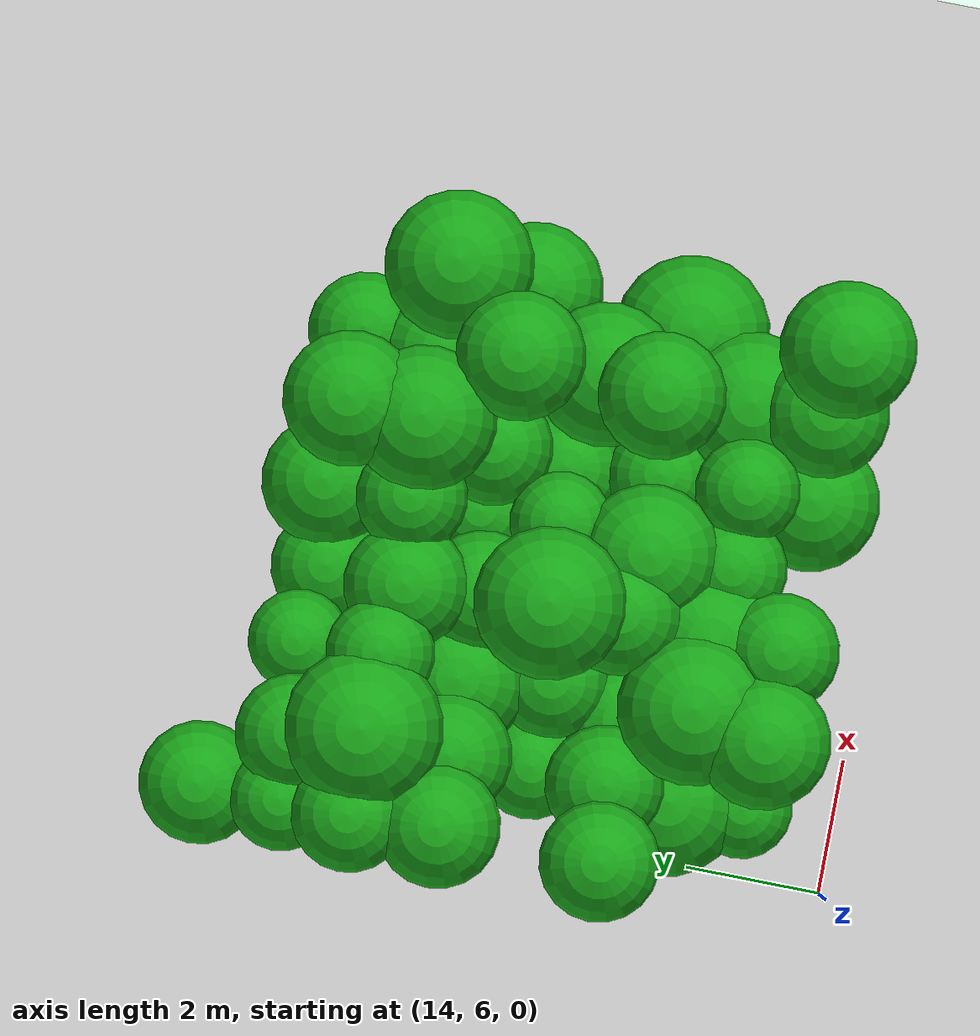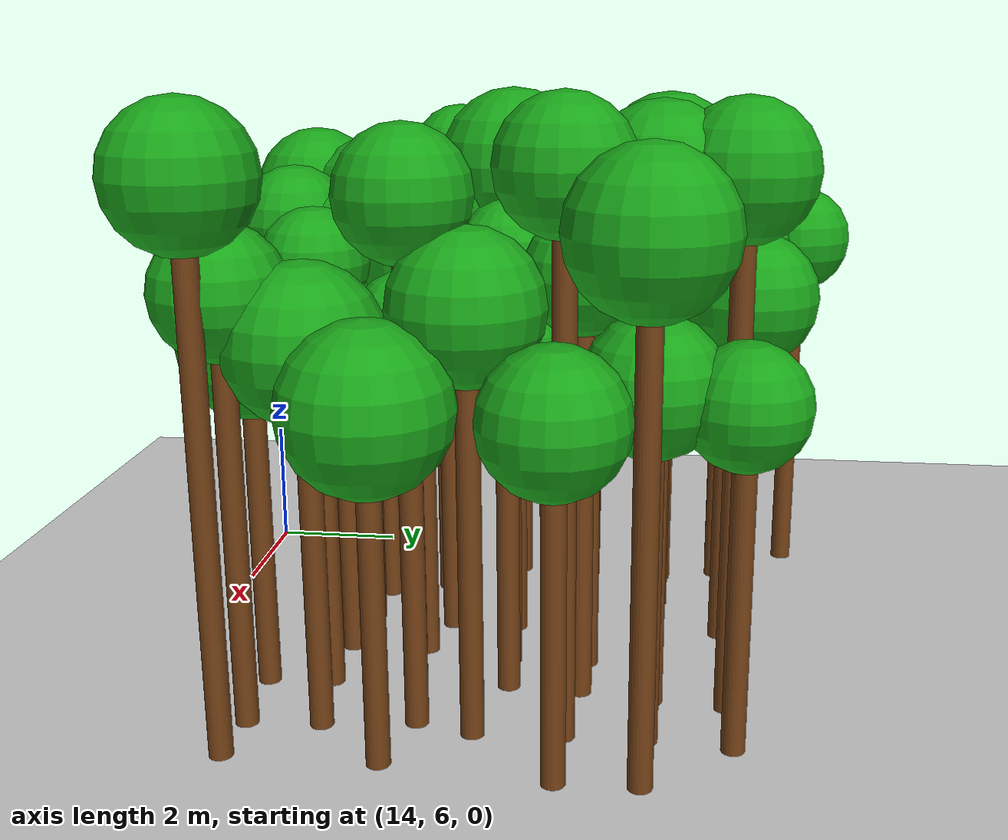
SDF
<sdf version="1.6">
 <world name="forest_world">
  <include><uri>model://sun</uri></include>
  <include><uri>model://ground_plane</uri></include>
  <model name="tree_2213_trunk">
   <static>true</static>
   <pose>14.09 9.43 3.25 0 0 0</pose>
   <link name="link">
    <collision name="collision">
     <geometry><cylinder><radius>0.16</radius><length>6.50</length></cylinder></geometry>
    </collision>
    <visual name="visual">
     <geometry><cylinder><radius>0.16</radius><length>6.50</length></cylinder></geometry>
     <material><ambient>0.35 0.20 0.05 1</ambient><diffuse>0.45 0.25 0.08 1</diffuse></material>
    </visual>
   </link>
  </model>
  <model name="tree_2213_leaf">
   <static>true</static>
   <pose>14.09 9.43 7.00 0 0 0</pose>
   <link name="link">
    <collision name="collision"><geometry><sphere><radius>0.83</radius></sphere></geometry></collision>
    <visual name="visual">
     <geometry><sphere><radius>0.83</radius></sphere></geometry>
     <material><ambient>0.05 0.45 0.05 1</ambient><diffuse>0.10 0.65 0.10 1</diffuse></material>
    </visual>
   </link>
  </model>
  <model name="tree_2215_trunk">
   <static>true</static>
   <pose>14.15 11.68 3.14 0 0 0</pose>
   <link name="link">
    <collision name="collision">
     <geometry><cylinder><radius>0.16</radius><length>6.27</length></cylinder></geometry>
    </collision>
    <visual name="visual">
     <geometry><cylinder><radius>0.16</radius><length>6.27</length></cylinder></geometry>
     <material><ambient>0.35 0.20 0.05 1</ambient><diffuse>0.45 0.25 0.08 1</diffuse></material>
    </visual>
   </link>
  </model>
  <model name="tree_2215_leaf">
   <static>true</static>
   <pose>14.15 11.68 6.79 0 0 0</pose>
   <link name="link">
    <collision name="collision"><geometry><sphere><radius>0.86</radius></sphere></geometry></collision>
    <visual name="visual">
     <geometry><sphere><radius>0.86</radius></sphere></geometry>
     <material><ambient>0.05 0.45 0.05 1</ambient><diffuse>0.10 0.65 0.10 1</diffuse></material>
    </visual>
   </link>
  </model>
  <model name="tree_2216_trunk">
   <static>true</static>
   <pose>14.09 12.90 3.15 0 0 0</pose>
   <link name="link">
    <collision name="collision">
     <geometry><cylinder><radius>0.16</radius><length>6.30</length></cylinder></geometry>
    </collision>
    <visual name="visual">
     <geometry><cylinder><radius>0.16</radius><length>6.30</length></cylinder></geometry>
     <material><ambient>0.35 0.20 0.05 1</ambient><diffuse>0.45 0.25 0.08 1</diffuse></material>
    </visual>
   </link>
  </model>
  <model name="tree_2216_leaf">
   <static>true</static>
   <pose>14.09 12.90 6.79 0 0 0</pose>
   <link name="link">
    <collision name="collision"><geometry><sphere><radius>0.81</radius></sphere></geometry></collision>
    <visual name="visual">
     <geometry><sphere><radius>0.81</radius></sphere></geometry>
     <material><ambient>0.05 0.45 0.05 1</ambient><diffuse>0.10 0.65 0.10 1</diffuse></material>
    </visual>
   </link>
  </model>
  <model name="tree_2217_trunk">
   <static>true</static>
   <pose>14.10 13.87 2.88 0 0 0</pose>
   <link name="link">
    <collision name="collision">
     <geometry><cylinder><radius>0.16</radius><length>5.75</length></cylinder></geometry>
    </collision>
    <visual name="visual">
     <geometry><cylinder><radius>0.16</radius><length>5.75</length></cylinder></geometry>
     <material><ambient>0.35 0.20 0.05 1</ambient><diffuse>0.45 0.25 0.08 1</diffuse></material>
    </visual>
   </link>
  </model>
  <model name="tree_2217_leaf">
   <static>true</static>
   <pose>14.10 13.87 6.19 0 0 0</pose>
   <link name="link">
    <collision name="collision"><geometry><sphere><radius>0.73</radius></sphere></geometry></collision>
    <visual name="visual">
     <geometry><sphere><radius>0.73</radius></sphere></geometry>
     <material><ambient>0.05 0.45 0.05 1</ambient><diffuse>0.10 0.65 0.10 1</diffuse></material>
    </visual>
   </link>
  </model>
  <model name="tree_2218_trunk">
   <static>true</static>
   <pose>14.09 15.04 2.58 0 0 0</pose>
   <link name="link">
    <collision name="collision">
     <geometry><cylinder><radius>0.16</radius><length>5.15</length></cylinder></geometry>
    </collision>
    <visual name="visual">
     <geometry><cylinder><radius>0.16</radius><length>5.15</length></cylinder></geometry>
     <material><ambient>0.35 0.20 0.05 1</ambient><diffuse>0.45 0.25 0.08 1</diffuse></material>
    </visual>
   </link>
  </model>
  <model name="tree_2218_leaf">
   <static>true</static>
   <pose>14.09 15.04 5.67 0 0 0</pose>
   <link name="link">
    <collision name="collision"><geometry><sphere><radius>0.86</radius></sphere></geometry></collision>
    <visual name="visual">
     <geometry><sphere><radius>0.86</radius></sphere></geometry>
     <material><ambient>0.05 0.45 0.05 1</ambient><diffuse>0.10 0.65 0.10 1</diffuse></material>
    </visual>
   </link>
  </model>
  <model name="tree_2266_trunk">
   <static>true</static>
   <pose>15.13 7.57 2.16 0 0 0</pose>
   <link name="link">
    <collision name="collision">
     <geometry><cylinder><radius>0.16</radius><length>4.32</length></cylinder></geometry>
    </collision>
    <visual name="visual">
     <geometry><cylinder><radius>0.16</radius><length>4.32</length></cylinder></geometry>
     <material><ambient>0.35 0.20 0.05 1</ambient><diffuse>0.45 0.25 0.08 1</diffuse></material>
    </visual>
   </link>
  </model>
  <model name="tree_2266_leaf">
   <static>true</static>
   <pose>15.13 7.57 4.75 0 0 0</pose>
   <link name="link">
    <collision name="collision"><geometry><sphere><radius>0.72</radius></sphere></geometry></collision>
    <visual name="visual">
     <geometry><sphere><radius>0.72</radius></sphere></geometry>
     <material><ambient>0.05 0.45 0.05 1</ambient><diffuse>0.10 0.65 0.10 1</diffuse></material>
    </visual>
   </link>
  </model>
  <model name="tree_2267_trunk">
   <static>true</static>
   <pose>15.04 8.62 2.07 0 0 0</pose>
   <link name="link">
    <collision name="collision">
     <geometry><cylinder><radius>0.16</radius><length>4.13</length></cylinder></geometry>
    </collision>
    <visual name="visual">
     <geometry><cylinder><radius>0.16</radius><length>4.13</length></cylinder></geometry>
     <material><ambient>0.35 0.20 0.05 1</ambient><diffuse>0.45 0.25 0.08 1</diffuse></material>
    </visual>
   </link>
  </model>
  <model name="tree_2267_leaf">
   <static>true</static>
   <pose>15.04 8.62 4.78 0 0 0</pose>
   <link name="link">
    <collision name="collision"><geometry><sphere><radius>1.08</radius></sphere></geometry></collision>
    <visual name="visual">
     <geometry><sphere><radius>1.08</radius></sphere></geometry>
     <material><ambient>0.05 0.45 0.05 1</ambient><diffuse>0.10 0.65 0.10 1</diffuse></material>
    </visual>
   </link>
  </model>
  <model name="tree_2268_trunk">
   <static>true</static>
   <pose>15.11 9.54 2.73 0 0 0</pose>
   <link name="link">
    <collision name="collision">
     <geometry><cylinder><radius>0.16</radius><length>5.46</length></cylinder></geometry>
    </collision>
    <visual name="visual">
     <geometry><cylinder><radius>0.16</radius><length>5.46</length></cylinder></geometry>
     <material><ambient>0.35 0.20 0.05 1</ambient><diffuse>0.45 0.25 0.08 1</diffuse></material>
    </visual>
   </link>
  </model>
  <model name="tree_2268_leaf">
   <static>true</static>
   <pose>15.11 9.54 5.96 0 0 0</pose>
   <link name="link">
    <collision name="collision"><geometry><sphere><radius>0.83</radius></sphere></geometry></collision>
    <visual name="visual">
     <geometry><sphere><radius>0.83</radius></sphere></geometry>
     <material><ambient>0.05 0.45 0.05 1</ambient><diffuse>0.10 0.65 0.10 1</diffuse></material>
    </visual>
   </link>
  </model>
  <model name="tree_2269_trunk">
   <static>true</static>
   <pose>15.16 10.57 2.13 0 0 0</pose>
   <link name="link">
    <collision name="collision">
     <geometry><cylinder><radius>0.16</radius><length>4.26</length></cylinder></geometry>
    </collision>
    <visual name="visual">
     <geometry><cylinder><radius>0.16</radius><length>4.26</length></cylinder></geometry>
     <material><ambient>0.35 0.20 0.05 1</ambient><diffuse>0.45 0.25 0.08 1</diffuse></material>
    </visual>
   </link>
  </model>
  <model name="tree_2269_leaf">
   <static>true</static>
   <pose>15.16 10.57 4.72 0 0 0</pose>
   <link name="link">
    <collision name="collision"><geometry><sphere><radius>0.76</radius></sphere></geometry></collision>
    <visual name="visual">
     <geometry><sphere><radius>0.76</radius></sphere></geometry>
     <material><ambient>0.05 0.45 0.05 1</ambient><diffuse>0.10 0.65 0.10 1</diffuse></material>
    </visual>
   </link>
  </model>
  <model name="tree_2270_trunk">
   <static>true</static>
   <pose>15.12 11.72 2.79 0 0 0</pose>
   <link name="link">
    <collision name="collision">
     <geometry><cylinder><radius>0.16</radius><length>5.58</length></cylinder></geometry>
    </collision>
    <visual name="visual">
     <geometry><cylinder><radius>0.16</radius><length>5.58</length></cylinder></geometry>
     <material><ambient>0.35 0.20 0.05 1</ambient><diffuse>0.45 0.25 0.08 1</diffuse></material>
    </visual>
   </link>
  </model>
  <model name="tree_2270_leaf">
   <static>true</static>
   <pose>15.12 11.72 6.10 0 0 0</pose>
   <link name="link">
    <collision name="collision"><geometry><sphere><radius>0.87</radius></sphere></geometry></collision>
    <visual name="visual">
     <geometry><sphere><radius>0.87</radius></sphere></geometry>
     <material><ambient>0.05 0.45 0.05 1</ambient><diffuse>0.10 0.65 0.10 1</diffuse></material>
    </visual>
   </link>
  </model>
  <model name="tree_2271_trunk">
   <static>true</static>
   <pose>15.27 12.93 3.18 0 0 0</pose>
   <link name="link">
    <collision name="collision">
     <geometry><cylinder><radius>0.16</radius><length>6.36</length></cylinder></geometry>
    </collision>
    <visual name="visual">
     <geometry><cylinder><radius>0.16</radius><length>6.36</length></cylinder></geometry>
     <material><ambient>0.35 0.20 0.05 1</ambient><diffuse>0.45 0.25 0.08 1</diffuse></material>
    </visual>
   </link>
  </model>
  <model name="tree_2271_leaf">
   <static>true</static>
   <pose>15.27 12.93 7.02 0 0 0</pose>
   <link name="link">
    <collision name="collision"><geometry><sphere><radius>1.10</radius></sphere></geometry></collision>
    <visual name="visual">
     <geometry><sphere><radius>1.10</radius></sphere></geometry>
     <material><ambient>0.05 0.45 0.05 1</ambient><diffuse>0.10 0.65 0.10 1</diffuse></material>
    </visual>
   </link>
  </model>
  <model name="tree_2272_trunk">
   <static>true</static>
   <pose>15.02 13.85 2.97 0 0 0</pose>
   <link name="link">
    <collision name="collision">
     <geometry><cylinder><radius>0.16</radius><length>5.94</length></cylinder></geometry>
    </collision>
    <visual name="visual">
     <geometry><cylinder><radius>0.16</radius><length>5.94</length></cylinder></geometry>
     <material><ambient>0.35 0.20 0.05 1</ambient><diffuse>0.45 0.25 0.08 1</diffuse></material>
    </visual>
   </link>
  </model>
  <model name="tree_2272_leaf">
   <static>true</static>
   <pose>15.02 13.85 6.44 0 0 0</pose>
   <link name="link">
    <collision name="collision"><geometry><sphere><radius>0.83</radius></sphere></geometry></collision>
    <visual name="visual">
     <geometry><sphere><radius>0.83</radius></sphere></geometry>
     <material><ambient>0.05 0.45 0.05 1</ambient><diffuse>0.10 0.65 0.10 1</diffuse></material>
    </visual>
   </link>
  </model>
  <model name="tree_2321_trunk">
   <static>true</static>
   <pose>16.10 7.52 3.04 0 0 0</pose>
   <link name="link">
    <collision name="collision">
     <geometry><cylinder><radius>0.16</radius><length>6.09</length></cylinder></geometry>
    </collision>
    <visual name="visual">
     <geometry><cylinder><radius>0.16</radius><length>6.09</length></cylinder></geometry>
     <material><ambient>0.35 0.20 0.05 1</ambient><diffuse>0.45 0.25 0.08 1</diffuse></material>
    </visual>
   </link>
  </model>
  <model name="tree_2321_leaf">
   <static>true</static>
   <pose>16.10 7.52 6.65 0 0 0</pose>
   <link name="link">
    <collision name="collision"><geometry><sphere><radius>0.93</radius></sphere></geometry></collision>
    <visual name="visual">
     <geometry><sphere><radius>0.93</radius></sphere></geometry>
     <material><ambient>0.05 0.45 0.05 1</ambient><diffuse>0.10 0.65 0.10 1</diffuse></material>
    </visual>
   </link>
  </model>
  <model name="tree_2322_trunk">
   <static>true</static>
   <pose>16.37 8.54 2.91 0 0 0</pose>
   <link name="link">
    <collision name="collision">
     <geometry><cylinder><radius>0.16</radius><length>5.81</length></cylinder></geometry>
    </collision>
    <visual name="visual">
     <geometry><cylinder><radius>0.16</radius><length>5.81</length></cylinder></geometry>
     <material><ambient>0.35 0.20 0.05 1</ambient><diffuse>0.45 0.25 0.08 1</diffuse></material>
    </visual>
   </link>
  </model>
  <model name="tree_2322_leaf">
   <static>true</static>
   <pose>16.37 8.54 6.45 0 0 0</pose>
   <link name="link">
    <collision name="collision"><geometry><sphere><radius>1.06</radius></sphere></geometry></collision>
    <visual name="visual">
     <geometry><sphere><radius>1.06</radius></sphere></geometry>
     <material><ambient>0.05 0.45 0.05 1</ambient><diffuse>0.10 0.65 0.10 1</diffuse></material>
    </visual>
   </link>
  </model>
  <model name="tree_2323_trunk">
   <static>true</static>
   <pose>16.02 9.44 2.11 0 0 0</pose>
   <link name="link">
    <collision name="collision">
     <geometry><cylinder><radius>0.16</radius><length>4.21</length></cylinder></geometry>
    </collision>
    <visual name="visual">
     <geometry><cylinder><radius>0.16</radius><length>4.21</length></cylinder></geometry>
     <material><ambient>0.35 0.20 0.05 1</ambient><diffuse>0.45 0.25 0.08 1</diffuse></material>
    </visual>
   </link>
  </model>
  <model name="tree_2323_leaf">
   <static>true</static>
   <pose>16.02 9.44 4.77 0 0 0</pose>
   <link name="link">
    <collision name="collision"><geometry><sphere><radius>0.92</radius></sphere></geometry></collision>
    <visual name="visual">
     <geometry><sphere><radius>0.92</radius></sphere></geometry>
     <material><ambient>0.05 0.45 0.05 1</ambient><diffuse>0.10 0.65 0.10 1</diffuse></material>
    </visual>
   </link>
  </model>
  <model name="tree_2324_trunk">
   <static>true</static>
   <pose>16.38 10.52 2.36 0 0 0</pose>
   <link name="link">
    <collision name="collision">
     <geometry><cylinder><radius>0.16</radius><length>4.73</length></cylinder></geometry>
    </collision>
    <visual name="visual">
     <geometry><cylinder><radius>0.16</radius><length>4.73</length></cylinder></geometry>
     <material><ambient>0.35 0.20 0.05 1</ambient><diffuse>0.45 0.25 0.08 1</diffuse></material>
    </visual>
   </link>
  </model>
  <model name="tree_2324_leaf">
   <static>true</static>
   <pose>16.38 10.52 5.21 0 0 0</pose>
   <link name="link">
    <collision name="collision"><geometry><sphere><radius>0.81</radius></sphere></geometry></collision>
    <visual name="visual">
     <geometry><sphere><radius>0.81</radius></sphere></geometry>
     <material><ambient>0.05 0.45 0.05 1</ambient><diffuse>0.10 0.65 0.10 1</diffuse></material>
    </visual>
   </link>
  </model>
  <model name="tree_2325_trunk">
   <static>true</static>
   <pose>16.16 11.79 2.41 0 0 0</pose>
   <link name="link">
    <collision name="collision">
     <geometry><cylinder><radius>0.16</radius><length>4.83</length></cylinder></geometry>
    </collision>
    <visual name="visual">
     <geometry><cylinder><radius>0.16</radius><length>4.83</length></cylinder></geometry>
     <material><ambient>0.35 0.20 0.05 1</ambient><diffuse>0.45 0.25 0.08 1</diffuse></material>
    </visual>
   </link>
  </model>
  <model name="tree_2325_leaf">
   <static>true</static>
   <pose>16.16 11.79 5.42 0 0 0</pose>
   <link name="link">
    <collision name="collision"><geometry><sphere><radius>0.98</radius></sphere></geometry></collision>
    <visual name="visual">
     <geometry><sphere><radius>0.98</radius></sphere></geometry>
     <material><ambient>0.05 0.45 0.05 1</ambient><diffuse>0.10 0.65 0.10 1</diffuse></material>
    </visual>
   </link>
  </model>
  <model name="tree_2326_trunk">
   <static>true</static>
   <pose>16.33 12.90 3.18 0 0 0</pose>
   <link name="link">
    <collision name="collision">
     <geometry><cylinder><radius>0.16</radius><length>6.36</length></cylinder></geometry>
    </collision>
    <visual name="visual">
     <geometry><cylinder><radius>0.16</radius><length>6.36</length></cylinder></geometry>
     <material><ambient>0.35 0.20 0.05 1</ambient><diffuse>0.45 0.25 0.08 1</diffuse></material>
    </visual>
   </link>
  </model>
  <model name="tree_2326_leaf">
   <static>true</static>
   <pose>16.33 12.90 6.81 0 0 0</pose>
   <link name="link">
    <collision name="collision"><geometry><sphere><radius>0.75</radius></sphere></geometry></collision>
    <visual name="visual">
     <geometry><sphere><radius>0.75</radius></sphere></geometry>
     <material><ambient>0.05 0.45 0.05 1</ambient><diffuse>0.10 0.65 0.10 1</diffuse></material>
    </visual>
   </link>
  </model>
  <model name="tree_2327_trunk">
   <static>true</static>
   <pose>16.28 14.06 2.71 0 0 0</pose>
   <link name="link">
    <collision name="collision">
     <geometry><cylinder><radius>0.16</radius><length>5.42</length></cylinder></geometry>
    </collision>
    <visual name="visual">
     <geometry><cylinder><radius>0.16</radius><length>5.42</length></cylinder></geometry>
     <material><ambient>0.35 0.20 0.05 1</ambient><diffuse>0.45 0.25 0.08 1</diffuse></material>
    </visual>
   </link>
  </model>
  <model name="tree_2327_leaf">
   <static>true</static>
   <pose>16.28 14.06 5.85 0 0 0</pose>
   <link name="link">
    <collision name="collision"><geometry><sphere><radius>0.71</radius></sphere></geometry></collision>
    <visual name="visual">
     <geometry><sphere><radius>0.71</radius></sphere></geometry>
     <material><ambient>0.05 0.45 0.05 1</ambient><diffuse>0.10 0.65 0.10 1</diffuse></material>
    </visual>
   </link>
  </model>
  <model name="tree_2376_trunk">
   <static>true</static>
   <pose>17.36 7.51 2.91 0 0 0</pose>
   <link name="link">
    <collision name="collision">
     <geometry><cylinder><radius>0.16</radius><length>5.83</length></cylinder></geometry>
    </collision>
    <visual name="visual">
     <geometry><cylinder><radius>0.16</radius><length>5.83</length></cylinder></geometry>
     <material><ambient>0.35 0.20 0.05 1</ambient><diffuse>0.45 0.25 0.08 1</diffuse></material>
    </visual>
   </link>
  </model>
  <model name="tree_2376_leaf">
   <static>true</static>
   <pose>17.36 7.51 6.32 0 0 0</pose>
   <link name="link">
    <collision name="collision"><geometry><sphere><radius>0.82</radius></sphere></geometry></collision>
    <visual name="visual">
     <geometry><sphere><radius>0.82</radius></sphere></geometry>
     <material><ambient>0.05 0.45 0.05 1</ambient><diffuse>0.10 0.65 0.10 1</diffuse></material>
    </visual>
   </link>
  </model>
  <model name="tree_2377_trunk">
   <static>true</static>
   <pose>17.30 8.48 2.57 0 0 0</pose>
   <link name="link">
    <collision name="collision">
     <geometry><cylinder><radius>0.16</radius><length>5.15</length></cylinder></geometry>
    </collision>
    <visual name="visual">
     <geometry><cylinder><radius>0.16</radius><length>5.15</length></cylinder></geometry>
     <material><ambient>0.35 0.20 0.05 1</ambient><diffuse>0.45 0.25 0.08 1</diffuse></material>
    </visual>
   </link>
  </model>
  <model name="tree_2377_leaf">
   <static>true</static>
   <pose>17.30 8.48 5.80 0 0 0</pose>
   <link name="link">
    <collision name="collision"><geometry><sphere><radius>1.09</radius></sphere></geometry></collision>
    <visual name="visual">
     <geometry><sphere><radius>1.09</radius></sphere></geometry>
     <material><ambient>0.05 0.45 0.05 1</ambient><diffuse>0.10 0.65 0.10 1</diffuse></material>
    </visual>
   </link>
  </model>
  <model name="tree_2378_trunk">
   <static>true</static>
   <pose>17.45 9.76 3.00 0 0 0</pose>
   <link name="link">
    <collision name="collision">
     <geometry><cylinder><radius>0.16</radius><length>5.99</length></cylinder></geometry>
    </collision>
    <visual name="visual">
     <geometry><cylinder><radius>0.16</radius><length>5.99</length></cylinder></geometry>
     <material><ambient>0.35 0.20 0.05 1</ambient><diffuse>0.45 0.25 0.08 1</diffuse></material>
    </visual>
   </link>
  </model>
  <model name="tree_2378_leaf">
   <static>true</static>
   <pose>17.45 9.76 6.50 0 0 0</pose>
   <link name="link">
    <collision name="collision"><geometry><sphere><radius>0.84</radius></sphere></geometry></collision>
    <visual name="visual">
     <geometry><sphere><radius>0.84</radius></sphere></geometry>
     <material><ambient>0.05 0.45 0.05 1</ambient><diffuse>0.10 0.65 0.10 1</diffuse></material>
    </visual>
   </link>
  </model>
  <model name="tree_2379_trunk">
   <static>true</static>
   <pose>17.42 10.75 3.29 0 0 0</pose>
   <link name="link">
    <collision name="collision">
     <geometry><cylinder><radius>0.16</radius><length>6.59</length></cylinder></geometry>
    </collision>
    <visual name="visual">
     <geometry><cylinder><radius>0.16</radius><length>6.59</length></cylinder></geometry>
     <material><ambient>0.35 0.20 0.05 1</ambient><diffuse>0.45 0.25 0.08 1</diffuse></material>
    </visual>
   </link>
  </model>
  <model name="tree_2379_leaf">
   <static>true</static>
   <pose>17.42 10.75 7.22 0 0 0</pose>
   <link name="link">
    <collision name="collision"><geometry><sphere><radius>1.05</radius></sphere></geometry></collision>
    <visual name="visual">
     <geometry><sphere><radius>1.05</radius></sphere></geometry>
     <material><ambient>0.05 0.45 0.05 1</ambient><diffuse>0.10 0.65 0.10 1</diffuse></material>
    </visual>
   </link>
  </model>
  <model name="tree_2380_trunk">
   <static>true</static>
   <pose>17.41 11.69 2.68 0 0 0</pose>
   <link name="link">
    <collision name="collision">
     <geometry><cylinder><radius>0.16</radius><length>5.35</length></cylinder></geometry>
    </collision>
    <visual name="visual">
     <geometry><cylinder><radius>0.16</radius><length>5.35</length></cylinder></geometry>
     <material><ambient>0.35 0.20 0.05 1</ambient><diffuse>0.45 0.25 0.08 1</diffuse></material>
    </visual>
   </link>
  </model>
  <model name="tree_2380_leaf">
   <static>true</static>
   <pose>17.41 11.69 5.87 0 0 0</pose>
   <link name="link">
    <collision name="collision"><geometry><sphere><radius>0.86</radius></sphere></geometry></collision>
    <visual name="visual">
     <geometry><sphere><radius>0.86</radius></sphere></geometry>
     <material><ambient>0.05 0.45 0.05 1</ambient><diffuse>0.10 0.65 0.10 1</diffuse></material>
    </visual>
   </link>
  </model>
  <model name="tree_2381_trunk">
   <static>true</static>
   <pose>17.30 12.73 2.97 0 0 0</pose>
   <link name="link">
    <collision name="collision">
     <geometry><cylinder><radius>0.16</radius><length>5.94</length></cylinder></geometry>
    </collision>
    <visual name="visual">
     <geometry><cylinder><radius>0.16</radius><length>5.94</length></cylinder></geometry>
     <material><ambient>0.35 0.20 0.05 1</ambient><diffuse>0.45 0.25 0.08 1</diffuse></material>
    </visual>
   </link>
  </model>
  <model name="tree_2381_leaf">
   <static>true</static>
   <pose>17.30 12.73 6.46 0 0 0</pose>
   <link name="link">
    <collision name="collision"><geometry><sphere><radius>0.87</radius></sphere></geometry></collision>
    <visual name="visual">
     <geometry><sphere><radius>0.87</radius></sphere></geometry>
     <material><ambient>0.05 0.45 0.05 1</ambient><diffuse>0.10 0.65 0.10 1</diffuse></material>
    </visual>
   </link>
  </model>
  <model name="tree_2382_trunk">
   <static>true</static>
   <pose>17.37 13.88 2.31 0 0 0</pose>
   <link name="link">
    <collision name="collision">
     <geometry><cylinder><radius>0.16</radius><length>4.63</length></cylinder></geometry>
    </collision>
    <visual name="visual">
     <geometry><cylinder><radius>0.16</radius><length>4.63</length></cylinder></geometry>
     <material><ambient>0.35 0.20 0.05 1</ambient><diffuse>0.45 0.25 0.08 1</diffuse></material>
    </visual>
   </link>
  </model>
  <model name="tree_2382_leaf">
   <static>true</static>
   <pose>17.37 13.88 5.11 0 0 0</pose>
   <link name="link">
    <collision name="collision"><geometry><sphere><radius>0.81</radius></sphere></geometry></collision>
    <visual name="visual">
     <geometry><sphere><radius>0.81</radius></sphere></geometry>
     <material><ambient>0.05 0.45 0.05 1</ambient><diffuse>0.10 0.65 0.10 1</diffuse></material>
    </visual>
   </link>
  </model>
  <model name="tree_2432_trunk">
   <static>true</static>
   <pose>18.35 8.38 2.70 0 0 0</pose>
   <link name="link">
    <collision name="collision">
     <geometry><cylinder><radius>0.16</radius><length>5.40</length></cylinder></geometry>
    </collision>
    <visual name="visual">
     <geometry><cylinder><radius>0.16</radius><length>5.40</length></cylinder></geometry>
     <material><ambient>0.35 0.20 0.05 1</ambient><diffuse>0.45 0.25 0.08 1</diffuse></material>
    </visual>
   </link>
  </model>
  <model name="tree_2432_leaf">
   <static>true</static>
   <pose>18.35 8.38 5.87 0 0 0</pose>
   <link name="link">
    <collision name="collision"><geometry><sphere><radius>0.79</radius></sphere></geometry></collision>
    <visual name="visual">
     <geometry><sphere><radius>0.79</radius></sphere></geometry>
     <material><ambient>0.05 0.45 0.05 1</ambient><diffuse>0.10 0.65 0.10 1</diffuse></material>
    </visual>
   </link>
  </model>
  <model name="tree_2433_trunk">
   <static>true</static>
   <pose>18.33 9.53 2.80 0 0 0</pose>
   <link name="link">
    <collision name="collision">
     <geometry><cylinder><radius>0.16</radius><length>5.60</length></cylinder></geometry>
    </collision>
    <visual name="visual">
     <geometry><cylinder><radius>0.16</radius><length>5.60</length></cylinder></geometry>
     <material><ambient>0.35 0.20 0.05 1</ambient><diffuse>0.45 0.25 0.08 1</diffuse></material>
    </visual>
   </link>
  </model>
  <model name="tree_2433_leaf">
   <static>true</static>
   <pose>18.33 9.53 6.20 0 0 0</pose>
   <link name="link">
    <collision name="collision"><geometry><sphere><radius>0.99</radius></sphere></geometry></collision>
    <visual name="visual">
     <geometry><sphere><radius>0.99</radius></sphere></geometry>
     <material><ambient>0.05 0.45 0.05 1</ambient><diffuse>0.10 0.65 0.10 1</diffuse></material>
    </visual>
   </link>
  </model>
  <model name="tree_2434_trunk">
   <static>true</static>
   <pose>18.55 10.81 2.85 0 0 0</pose>
   <link name="link">
    <collision name="collision">
     <geometry><cylinder><radius>0.16</radius><length>5.71</length></cylinder></geometry>
    </collision>
    <visual name="visual">
     <geometry><cylinder><radius>0.16</radius><length>5.71</length></cylinder></geometry>
     <material><ambient>0.35 0.20 0.05 1</ambient><diffuse>0.45 0.25 0.08 1</diffuse></material>
    </visual>
   </link>
  </model>
  <model name="tree_2434_leaf">
   <static>true</static>
   <pose>18.55 10.81 6.13 0 0 0</pose>
   <link name="link">
    <collision name="collision"><geometry><sphere><radius>0.71</radius></sphere></geometry></collision>
    <visual name="visual">
     <geometry><sphere><radius>0.71</radius></sphere></geometry>
     <material><ambient>0.05 0.45 0.05 1</ambient><diffuse>0.10 0.65 0.10 1</diffuse></material>
    </visual>
   </link>
  </model>
  <model name="tree_2435_trunk">
   <static>true</static>
   <pose>18.51 11.93 2.40 0 0 0</pose>
   <link name="link">
    <collision name="collision">
     <geometry><cylinder><radius>0.16</radius><length>4.80</length></cylinder></geometry>
    </collision>
    <visual name="visual">
     <geometry><cylinder><radius>0.16</radius><length>4.80</length></cylinder></geometry>
     <material><ambient>0.35 0.20 0.05 1</ambient><diffuse>0.45 0.25 0.08 1</diffuse></material>
    </visual>
   </link>
  </model>
  <model name="tree_2435_leaf">
   <static>true</static>
   <pose>18.51 11.93 5.24 0 0 0</pose>
   <link name="link">
    <collision name="collision"><geometry><sphere><radius>0.74</radius></sphere></geometry></collision>
    <visual name="visual">
     <geometry><sphere><radius>0.74</radius></sphere></geometry>
     <material><ambient>0.05 0.45 0.05 1</ambient><diffuse>0.10 0.65 0.10 1</diffuse></material>
    </visual>
   </link>
  </model>
  <model name="tree_2436_trunk">
   <static>true</static>
   <pose>18.50 12.88 3.09 0 0 0</pose>
   <link name="link">
    <collision name="collision">
     <geometry><cylinder><radius>0.16</radius><length>6.18</length></cylinder></geometry>
    </collision>
    <visual name="visual">
     <geometry><cylinder><radius>0.16</radius><length>6.18</length></cylinder></geometry>
     <material><ambient>0.35 0.20 0.05 1</ambient><diffuse>0.45 0.25 0.08 1</diffuse></material>
    </visual>
   </link>
  </model>
  <model name="tree_2436_leaf">
   <static>true</static>
   <pose>18.50 12.88 6.64 0 0 0</pose>
   <link name="link">
    <collision name="collision"><geometry><sphere><radius>0.77</radius></sphere></geometry></collision>
    <visual name="visual">
     <geometry><sphere><radius>0.77</radius></sphere></geometry>
     <material><ambient>0.05 0.45 0.05 1</ambient><diffuse>0.10 0.65 0.10 1</diffuse></material>
    </visual>
   </link>
  </model>
  <model name="tree_2437_trunk">
   <static>true</static>
   <pose>18.52 14.11 2.50 0 0 0</pose>
   <link name="link">
    <collision name="collision">
     <geometry><cylinder><radius>0.16</radius><length>5.00</length></cylinder></geometry>
    </collision>
    <visual name="visual">
     <geometry><cylinder><radius>0.16</radius><length>5.00</length></cylinder></geometry>
     <material><ambient>0.35 0.20 0.05 1</ambient><diffuse>0.45 0.25 0.08 1</diffuse></material>
    </visual>
   </link>
  </model>
  <model name="tree_2437_leaf">
   <static>true</static>
   <pose>18.52 14.11 5.55 0 0 0</pose>
   <link name="link">
    <collision name="collision"><geometry><sphere><radius>0.91</radius></sphere></geometry></collision>
    <visual name="visual">
     <geometry><sphere><radius>0.91</radius></sphere></geometry>
     <material><ambient>0.05 0.45 0.05 1</ambient><diffuse>0.10 0.65 0.10 1</diffuse></material>
    </visual>
   </link>
  </model>
  <model name="tree_2486_trunk">
   <static>true</static>
   <pose>19.51 7.43 2.17 0 0 0</pose>
   <link name="link">
    <collision name="collision">
     <geometry><cylinder><radius>0.16</radius><length>4.35</length></cylinder></geometry>
    </collision>
    <visual name="visual">
     <geometry><cylinder><radius>0.16</radius><length>4.35</length></cylinder></geometry>
     <material><ambient>0.35 0.20 0.05 1</ambient><diffuse>0.45 0.25 0.08 1</diffuse></material>
    </visual>
   </link>
  </model>
  <model name="tree_2486_leaf">
   <static>true</static>
   <pose>19.51 7.43 4.94 0 0 0</pose>
   <link name="link">
    <collision name="collision"><geometry><sphere><radius>0.98</radius></sphere></geometry></collision>
    <visual name="visual">
     <geometry><sphere><radius>0.98</radius></sphere></geometry>
     <material><ambient>0.05 0.45 0.05 1</ambient><diffuse>0.10 0.65 0.10 1</diffuse></material>
    </visual>
   </link>
  </model>
  <model name="tree_2487_trunk">
   <static>true</static>
   <pose>19.46 8.36 2.83 0 0 0</pose>
   <link name="link">
    <collision name="collision">
     <geometry><cylinder><radius>0.16</radius><length>5.66</length></cylinder></geometry>
    </collision>
    <visual name="visual">
     <geometry><cylinder><radius>0.16</radius><length>5.66</length></cylinder></geometry>
     <material><ambient>0.35 0.20 0.05 1</ambient><diffuse>0.45 0.25 0.08 1</diffuse></material>
    </visual>
   </link>
  </model>
  <model name="tree_2487_leaf">
   <static>true</static>
   <pose>19.46 8.36 6.10 0 0 0</pose>
   <link name="link">
    <collision name="collision"><geometry><sphere><radius>0.73</radius></sphere></geometry></collision>
    <visual name="visual">
     <geometry><sphere><radius>0.73</radius></sphere></geometry>
     <material><ambient>0.05 0.45 0.05 1</ambient><diffuse>0.10 0.65 0.10 1</diffuse></material>
    </visual>
   </link>
  </model>
  <model name="tree_2488_trunk">
   <static>true</static>
   <pose>19.46 9.57 2.41 0 0 0</pose>
   <link name="link">
    <collision name="collision">
     <geometry><cylinder><radius>0.16</radius><length>4.81</length></cylinder></geometry>
    </collision>
    <visual name="visual">
     <geometry><cylinder><radius>0.16</radius><length>4.81</length></cylinder></geometry>
     <material><ambient>0.35 0.20 0.05 1</ambient><diffuse>0.45 0.25 0.08 1</diffuse></material>
    </visual>
   </link>
  </model>
  <model name="tree_2488_leaf">
   <static>true</static>
   <pose>19.46 9.57 5.26 0 0 0</pose>
   <link name="link">
    <collision name="collision"><geometry><sphere><radius>0.75</radius></sphere></geometry></collision>
    <visual name="visual">
     <geometry><sphere><radius>0.75</radius></sphere></geometry>
     <material><ambient>0.05 0.45 0.05 1</ambient><diffuse>0.10 0.65 0.10 1</diffuse></material>
    </visual>
   </link>
  </model>
  <model name="tree_2489_trunk">
   <static>true</static>
   <pose>19.33 10.88 2.24 0 0 0</pose>
   <link name="link">
    <collision name="collision">
     <geometry><cylinder><radius>0.16</radius><length>4.49</length></cylinder></geometry>
    </collision>
    <visual name="visual">
     <geometry><cylinder><radius>0.16</radius><length>4.49</length></cylinder></geometry>
     <material><ambient>0.35 0.20 0.05 1</ambient><diffuse>0.45 0.25 0.08 1</diffuse></material>
    </visual>
   </link>
  </model>
  <model name="tree_2489_leaf">
   <static>true</static>
   <pose>19.33 10.88 4.98 0 0 0</pose>
   <link name="link">
    <collision name="collision"><geometry><sphere><radius>0.82</radius></sphere></geometry></collision>
    <visual name="visual">
     <geometry><sphere><radius>0.82</radius></sphere></geometry>
     <material><ambient>0.05 0.45 0.05 1</ambient><diffuse>0.10 0.65 0.10 1</diffuse></material>
    </visual>
   </link>
  </model>
  <model name="tree_2490_trunk">
   <static>true</static>
   <pose>19.40 11.90 2.75 0 0 0</pose>
   <link name="link">
    <collision name="collision">
     <geometry><cylinder><radius>0.16</radius><length>5.50</length></cylinder></geometry>
    </collision>
    <visual name="visual">
     <geometry><cylinder><radius>0.16</radius><length>5.50</length></cylinder></geometry>
     <material><ambient>0.35 0.20 0.05 1</ambient><diffuse>0.45 0.25 0.08 1</diffuse></material>
    </visual>
   </link>
  </model>
  <model name="tree_2490_leaf">
   <static>true</static>
   <pose>19.40 11.90 5.99 0 0 0</pose>
   <link name="link">
    <collision name="collision"><geometry><sphere><radius>0.81</radius></sphere></geometry></collision>
    <visual name="visual">
     <geometry><sphere><radius>0.81</radius></sphere></geometry>
     <material><ambient>0.05 0.45 0.05 1</ambient><diffuse>0.10 0.65 0.10 1</diffuse></material>
    </visual>
   </link>
  </model>
  <model name="tree_2491_trunk">
   <static>true</static>
   <pose>19.57 12.90 3.33 0 0 0</pose>
   <link name="link">
    <collision name="collision">
     <geometry><cylinder><radius>0.16</radius><length>6.66</length></cylinder></geometry>
    </collision>
    <visual name="visual">
     <geometry><cylinder><radius>0.16</radius><length>6.66</length></cylinder></geometry>
     <material><ambient>0.35 0.20 0.05 1</ambient><diffuse>0.45 0.25 0.08 1</diffuse></material>
    </visual>
   </link>
  </model>
  <model name="tree_2491_leaf">
   <static>true</static>
   <pose>19.57 12.90 7.25 0 0 0</pose>
   <link name="link">
    <collision name="collision"><geometry><sphere><radius>1.00</radius></sphere></geometry></collision>
    <visual name="visual">
     <geometry><sphere><radius>1.00</radius></sphere></geometry>
     <material><ambient>0.05 0.45 0.05 1</ambient><diffuse>0.10 0.65 0.10 1</diffuse></material>
    </visual>
   </link>
  </model>
  <model name="tree_2492_trunk">
   <static>true</static>
   <pose>19.64 13.93 3.40 0 0 0</pose>
   <link name="link">
    <collision name="collision">
     <geometry><cylinder><radius>0.16</radius><length>6.81</length></cylinder></geometry>
    </collision>
    <visual name="visual">
     <geometry><cylinder><radius>0.16</radius><length>6.81</length></cylinder></geometry>
     <material><ambient>0.35 0.20 0.05 1</ambient><diffuse>0.45 0.25 0.08 1</diffuse></material>
    </visual>
   </link>
  </model>
  <model name="tree_2492_leaf">
   <static>true</static>
   <pose>19.64 13.93 7.37 0 0 0</pose>
   <link name="link">
    <collision name="collision"><geometry><sphere><radius>0.93</radius></sphere></geometry></collision>
    <visual name="visual">
     <geometry><sphere><radius>0.93</radius></sphere></geometry>
     <material><ambient>0.05 0.45 0.05 1</ambient><diffuse>0.10 0.65 0.10 1</diffuse></material>
    </visual>
   </link>
  </model>
  <model name="tree_2541_trunk">
   <static>true</static>
   <pose>20.71 7.49 2.69 0 0 0</pose>
   <link name="link">
    <collision name="collision">
     <geometry><cylinder><radius>0.16</radius><length>5.38</length></cylinder></geometry>
    </collision>
    <visual name="visual">
     <geometry><cylinder><radius>0.16</radius><length>5.38</length></cylinder></geometry>
     <material><ambient>0.35 0.20 0.05 1</ambient><diffuse>0.45 0.25 0.08 1</diffuse></material>
    </visual>
   </link>
  </model>
  <model name="tree_2541_leaf">
   <static>true</static>
   <pose>20.71 7.49 5.92 0 0 0</pose>
   <link name="link">
    <collision name="collision"><geometry><sphere><radius>0.89</radius></sphere></geometry></collision>
    <visual name="visual">
     <geometry><sphere><radius>0.89</radius></sphere></geometry>
     <material><ambient>0.05 0.45 0.05 1</ambient><diffuse>0.10 0.65 0.10 1</diffuse></material>
    </visual>
   </link>
  </model>
  <model name="tree_2542_trunk">
   <static>true</static>
   <pose>20.65 8.51 2.32 0 0 0</pose>
   <link name="link">
    <collision name="collision">
     <geometry><cylinder><radius>0.16</radius><length>4.65</length></cylinder></geometry>
    </collision>
    <visual name="visual">
     <geometry><cylinder><radius>0.16</radius><length>4.65</length></cylinder></geometry>
     <material><ambient>0.35 0.20 0.05 1</ambient><diffuse>0.45 0.25 0.08 1</diffuse></material>
    </visual>
   </link>
  </model>
  <model name="tree_2542_leaf">
   <static>true</static>
   <pose>20.65 8.51 5.28 0 0 0</pose>
   <link name="link">
    <collision name="collision"><geometry><sphere><radius>1.06</radius></sphere></geometry></collision>
    <visual name="visual">
     <geometry><sphere><radius>1.06</radius></sphere></geometry>
     <material><ambient>0.05 0.45 0.05 1</ambient><diffuse>0.10 0.65 0.10 1</diffuse></material>
    </visual>
   </link>
  </model>
  <model name="tree_2543_trunk">
   <static>true</static>
   <pose>20.48 9.78 3.30 0 0 0</pose>
   <link name="link">
    <collision name="collision">
     <geometry><cylinder><radius>0.16</radius><length>6.60</length></cylinder></geometry>
    </collision>
    <visual name="visual">
     <geometry><cylinder><radius>0.16</radius><length>6.60</length></cylinder></geometry>
     <material><ambient>0.35 0.20 0.05 1</ambient><diffuse>0.45 0.25 0.08 1</diffuse></material>
    </visual>
   </link>
  </model>
  <model name="tree_2543_leaf">
   <static>true</static>
   <pose>20.48 9.78 7.13 0 0 0</pose>
   <link name="link">
    <collision name="collision"><geometry><sphere><radius>0.88</radius></sphere></geometry></collision>
    <visual name="visual">
     <geometry><sphere><radius>0.88</radius></sphere></geometry>
     <material><ambient>0.05 0.45 0.05 1</ambient><diffuse>0.10 0.65 0.10 1</diffuse></material>
    </visual>
   </link>
  </model>
  <model name="tree_2544_trunk">
   <static>true</static>
   <pose>20.69 10.57 2.60 0 0 0</pose>
   <link name="link">
    <collision name="collision">
     <geometry><cylinder><radius>0.16</radius><length>5.20</length></cylinder></geometry>
    </collision>
    <visual name="visual">
     <geometry><cylinder><radius>0.16</radius><length>5.20</length></cylinder></geometry>
     <material><ambient>0.35 0.20 0.05 1</ambient><diffuse>0.45 0.25 0.08 1</diffuse></material>
    </visual>
   </link>
  </model>
  <model name="tree_2544_leaf">
   <static>true</static>
   <pose>20.69 10.57 5.80 0 0 0</pose>
   <link name="link">
    <collision name="collision"><geometry><sphere><radius>1.01</radius></sphere></geometry></collision>
    <visual name="visual">
     <geometry><sphere><radius>1.01</radius></sphere></geometry>
     <material><ambient>0.05 0.45 0.05 1</ambient><diffuse>0.10 0.65 0.10 1</diffuse></material>
    </visual>
   </link>
  </model>
  <model name="tree_2545_trunk">
   <static>true</static>
   <pose>20.63 11.77 3.49 0 0 0</pose>
   <link name="link">
    <collision name="collision">
     <geometry><cylinder><radius>0.16</radius><length>6.98</length></cylinder></geometry>
    </collision>
    <visual name="visual">
     <geometry><cylinder><radius>0.16</radius><length>6.98</length></cylinder></geometry>
     <material><ambient>0.35 0.20 0.05 1</ambient><diffuse>0.45 0.25 0.08 1</diffuse></material>
    </visual>
   </link>
  </model>
  <model name="tree_2545_leaf">
   <static>true</static>
   <pose>20.63 11.77 7.51 0 0 0</pose>
   <link name="link">
    <collision name="collision"><geometry><sphere><radius>0.89</radius></sphere></geometry></collision>
    <visual name="visual">
     <geometry><sphere><radius>0.89</radius></sphere></geometry>
     <material><ambient>0.05 0.45 0.05 1</ambient><diffuse>0.10 0.65 0.10 1</diffuse></material>
    </visual>
   </link>
  </model>
  <model name="tree_2546_trunk">
   <static>true</static>
   <pose>20.64 12.86 2.16 0 0 0</pose>
   <link name="link">
    <collision name="collision">
     <geometry><cylinder><radius>0.16</radius><length>4.31</length></cylinder></geometry>
    </collision>
    <visual name="visual">
     <geometry><cylinder><radius>0.16</radius><length>4.31</length></cylinder></geometry>
     <material><ambient>0.35 0.20 0.05 1</ambient><diffuse>0.45 0.25 0.08 1</diffuse></material>
    </visual>
   </link>
  </model>
  <model name="tree_2546_leaf">
   <static>true</static>
   <pose>20.64 12.86 4.86 0 0 0</pose>
   <link name="link">
    <collision name="collision"><geometry><sphere><radius>0.92</radius></sphere></geometry></collision>
    <visual name="visual">
     <geometry><sphere><radius>0.92</radius></sphere></geometry>
     <material><ambient>0.05 0.45 0.05 1</ambient><diffuse>0.10 0.65 0.10 1</diffuse></material>
    </visual>
   </link>
  </model>
  <model name="tree_2547_trunk">
   <static>true</static>
   <pose>20.73 14.00 2.08 0 0 0</pose>
   <link name="link">
    <collision name="collision">
     <geometry><cylinder><radius>0.16</radius><length>4.16</length></cylinder></geometry>
    </collision>
    <visual name="visual">
     <geometry><cylinder><radius>0.16</radius><length>4.16</length></cylinder></geometry>
     <material><ambient>0.35 0.20 0.05 1</ambient><diffuse>0.45 0.25 0.08 1</diffuse></material>
    </visual>
   </link>
  </model>
  <model name="tree_2547_leaf">
   <static>true</static>
   <pose>20.73 14.00 4.66 0 0 0</pose>
   <link name="link">
    <collision name="collision"><geometry><sphere><radius>0.82</radius></sphere></geometry></collision>
    <visual name="visual">
     <geometry><sphere><radius>0.82</radius></sphere></geometry>
     <material><ambient>0.05 0.45 0.05 1</ambient><diffuse>0.10 0.65 0.10 1</diffuse></material>
    </visual>
   </link>
  </model>
  <model name="tree_2596_trunk">
   <static>true</static>
   <pose>21.55 7.42 3.43 0 0 0</pose>
   <link name="link">
    <collision name="collision">
     <geometry><cylinder><radius>0.16</radius><length>6.86</length></cylinder></geometry>
    </collision>
    <visual name="visual">
     <geometry><cylinder><radius>0.16</radius><length>6.86</length></cylinder></geometry>
     <material><ambient>0.35 0.20 0.05 1</ambient><diffuse>0.45 0.25 0.08 1</diffuse></material>
    </visual>
   </link>
  </model>
  <model name="tree_2596_leaf">
   <static>true</static>
   <pose>21.55 7.42 7.43 0 0 0</pose>
   <link name="link">
    <collision name="collision"><geometry><sphere><radius>0.94</radius></sphere></geometry></collision>
    <visual name="visual">
     <geometry><sphere><radius>0.94</radius></sphere></geometry>
     <material><ambient>0.05 0.45 0.05 1</ambient><diffuse>0.10 0.65 0.10 1</diffuse></material>
    </visual>
   </link>
  </model>
  <model name="tree_2598_trunk">
   <static>true</static>
   <pose>21.54 9.49 2.03 0 0 0</pose>
   <link name="link">
    <collision name="collision">
     <geometry><cylinder><radius>0.16</radius><length>4.06</length></cylinder></geometry>
    </collision>
    <visual name="visual">
     <geometry><cylinder><radius>0.16</radius><length>4.06</length></cylinder></geometry>
     <material><ambient>0.35 0.20 0.05 1</ambient><diffuse>0.45 0.25 0.08 1</diffuse></material>
    </visual>
   </link>
  </model>
  <model name="tree_2598_leaf">
   <static>true</static>
   <pose>21.54 9.49 4.72 0 0 0</pose>
   <link name="link">
    <collision name="collision"><geometry><sphere><radius>1.10</radius></sphere></geometry></collision>
    <visual name="visual">
     <geometry><sphere><radius>1.10</radius></sphere></geometry>
     <material><ambient>0.05 0.45 0.05 1</ambient><diffuse>0.10 0.65 0.10 1</diffuse></material>
    </visual>
   </link>
  </model>
  <model name="tree_2600_trunk">
   <static>true</static>
   <pose>21.75 11.75 2.06 0 0 0</pose>
   <link name="link">
    <collision name="collision">
     <geometry><cylinder><radius>0.16</radius><length>4.13</length></cylinder></geometry>
    </collision>
    <visual name="visual">
     <geometry><cylinder><radius>0.16</radius><length>4.13</length></cylinder></geometry>
     <material><ambient>0.35 0.20 0.05 1</ambient><diffuse>0.45 0.25 0.08 1</diffuse></material>
    </visual>
   </link>
  </model>
  <model name="tree_2600_leaf">
   <static>true</static>
   <pose>21.75 11.75 4.69 0 0 0</pose>
   <link name="link">
    <collision name="collision"><geometry><sphere><radius>0.94</radius></sphere></geometry></collision>
    <visual name="visual">
     <geometry><sphere><radius>0.94</radius></sphere></geometry>
     <material><ambient>0.05 0.45 0.05 1</ambient><diffuse>0.10 0.65 0.10 1</diffuse></material>
    </visual>
   </link>
  </model>
  <model name="tree_2601_trunk">
   <static>true</static>
   <pose>21.73 12.83 3.14 0 0 0</pose>
   <link name="link">
    <collision name="collision">
     <geometry><cylinder><radius>0.16</radius><length>6.28</length></cylinder></geometry>
    </collision>
    <visual name="visual">
     <geometry><cylinder><radius>0.16</radius><length>6.28</length></cylinder></geometry>
     <material><ambient>0.35 0.20 0.05 1</ambient><diffuse>0.45 0.25 0.08 1</diffuse></material>
    </visual>
   </link>
  </model>
  <model name="tree_2601_leaf">
   <static>true</static>
   <pose>21.73 12.83 6.90 0 0 0</pose>
   <link name="link">
    <collision name="collision"><geometry><sphere><radius>1.03</radius></sphere></geometry></collision>
    <visual name="visual">
     <geometry><sphere><radius>1.03</radius></sphere></geometry>
     <material><ambient>0.05 0.45 0.05 1</ambient><diffuse>0.10 0.65 0.10 1</diffuse></material>
    </visual>
   </link>
  </model>
 </world>
</sdf>
